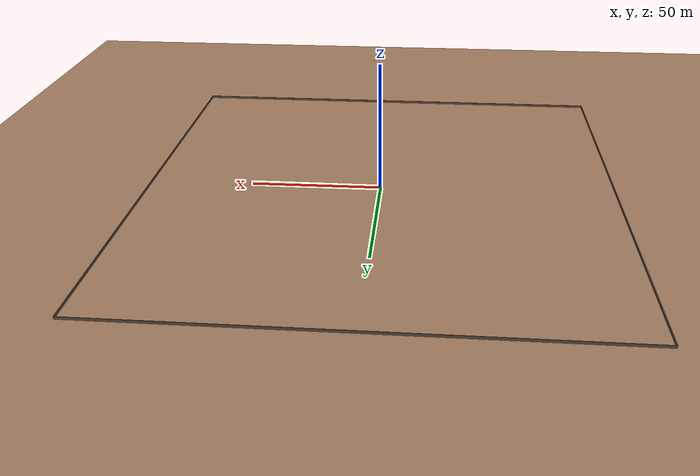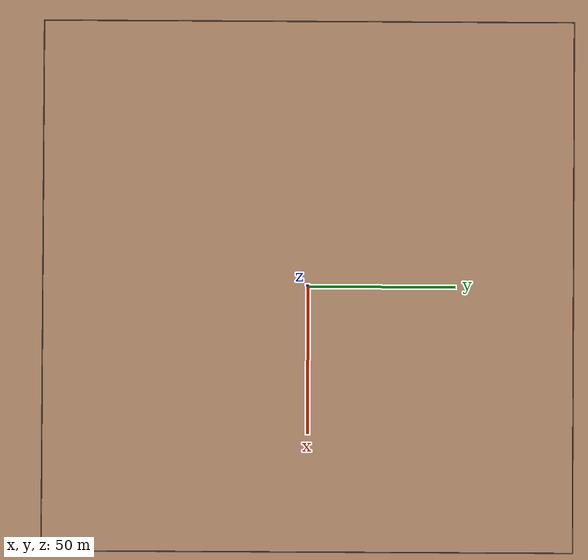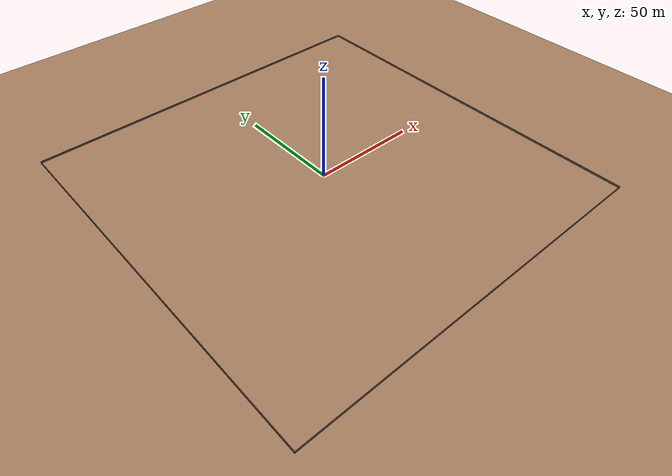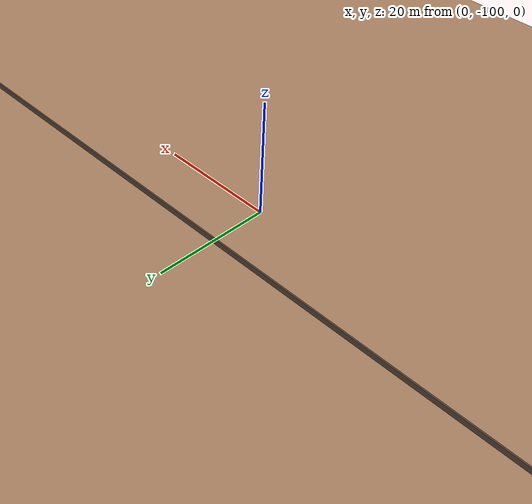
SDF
<?xml version="1.0" ?>
<sdf version="1.8">
  <world name="tree_exploration_test">

    <physics name="stable_physics" type="ignored">
      <max_step_size>0.003</max_step_size>
      <real_time_factor>3.0</real_time_factor>
    </physics>

    <plugin filename="ignition-gazebo-physics-system" name="ignition::gazebo::systems::Physics"/>
    <plugin filename="ignition-gazebo-user-commands-system" name="ignition::gazebo::systems::UserCommands"/>
    <plugin filename="ignition-gazebo-scene-broadcaster-system" name="ignition::gazebo::systems::SceneBroadcaster"/>
    <plugin filename="ignition-gazebo-sensors-system" name="ignition::gazebo::systems::Sensors">
      <render_engine>ogre2</render_engine>
    </plugin>

    <light name="low_sun" type="directional">
      <cast_shadows>true</cast_shadows>
      <pose>0 0 20 0 0 0</pose>
      <diffuse>0.95 0.86 0.72 1</diffuse>
      <specular>0.15 0.12 0.10 1</specular>
      <direction>-0.85 0.25 -0.45</direction>
    </light>

    <!-- Large open regolith ground: 200 m x 200 m -->
    <model name="regolith_ground">
      <static>true</static>
      <link name="link">
        <collision name="collision">
          <geometry>
            <plane>
              <normal>0 0 1</normal>
              <size>200 200</size>
            </plane>
          </geometry>
        </collision>
        <visual name="visual">
          <geometry>
            <plane>
              <normal>0 0 1</normal>
              <size>200 200</size>
            </plane>
          </geometry>
          <material>
            <ambient>0.55 0.43 0.34 1</ambient>
            <diffuse>0.65 0.50 0.38 1</diffuse>
            <specular>0.05 0.04 0.03 1</specular>
          </material>
        </visual>
      </link>
    </model>

    <!-- 180 m x 180 m open boundary. No internal obstacles. -->
    <model name="boundary_north">
      <static>true</static>
      <pose>0 90 0.5 0 0 0</pose>
      <link name="link">
        <collision name="collision">
          <geometry><box><size>180 0.25 1</size></box></geometry>
        </collision>
        <visual name="visual">
          <geometry><box><size>180 0.25 1</size></box></geometry>
          <material>
            <ambient>0.22 0.18 0.15 1</ambient>
            <diffuse>0.32 0.25 0.20 1</diffuse>
            <specular>0.04 0.03 0.02 1</specular>
          </material>
        </visual>
      </link>
    </model>

    <model name="boundary_south">
      <static>true</static>
      <pose>0 -90 0.5 0 0 0</pose>
      <link name="link">
        <collision name="collision">
          <geometry><box><size>180 0.25 1</size></box></geometry>
        </collision>
        <visual name="visual">
          <geometry><box><size>180 0.25 1</size></box></geometry>
          <material>
            <ambient>0.22 0.18 0.15 1</ambient>
            <diffuse>0.32 0.25 0.20 1</diffuse>
            <specular>0.04 0.03 0.02 1</specular>
          </material>
        </visual>
      </link>
    </model>

    <model name="boundary_east">
      <static>true</static>
      <pose>90 0 0.5 0 0 0</pose>
      <link name="link">
        <collision name="collision">
          <geometry><box><size>0.25 180 1</size></box></geometry>
        </collision>
        <visual name="visual">
          <geometry><box><size>0.25 180 1</size></box></geometry>
          <material>
            <ambient>0.22 0.18 0.15 1</ambient>
            <diffuse>0.32 0.25 0.20 1</diffuse>
            <specular>0.04 0.03 0.02 1</specular>
          </material>
        </visual>
      </link>
    </model>

    <model name="boundary_west">
      <static>true</static>
      <pose>-90 0 0.5 0 0 0</pose>
      <link name="link">
        <collision name="collision">
          <geometry><box><size>0.25 180 1</size></box></geometry>
        </collision>
        <visual name="visual">
          <geometry><box><size>0.25 180 1</size></box></geometry>
          <material>
            <ambient>0.22 0.18 0.15 1</ambient>
            <diffuse>0.32 0.25 0.20 1</diffuse>
            <specular>0.04 0.03 0.02 1</specular>
          </material>
        </visual>
      </link>
    </model>

  </world>
</sdf>
